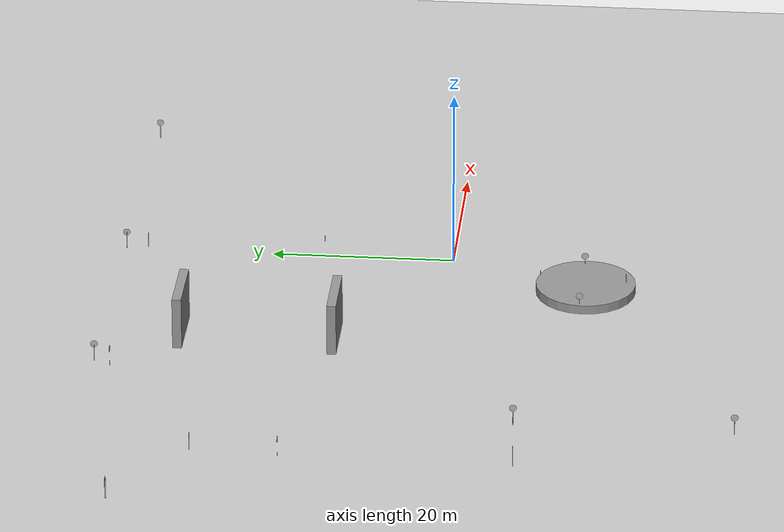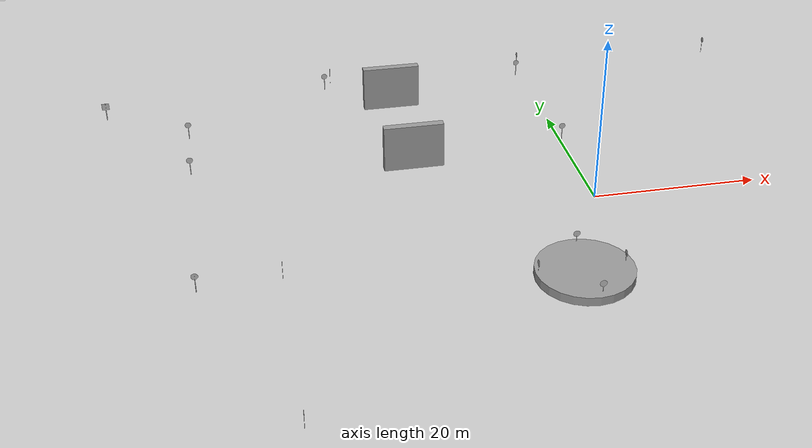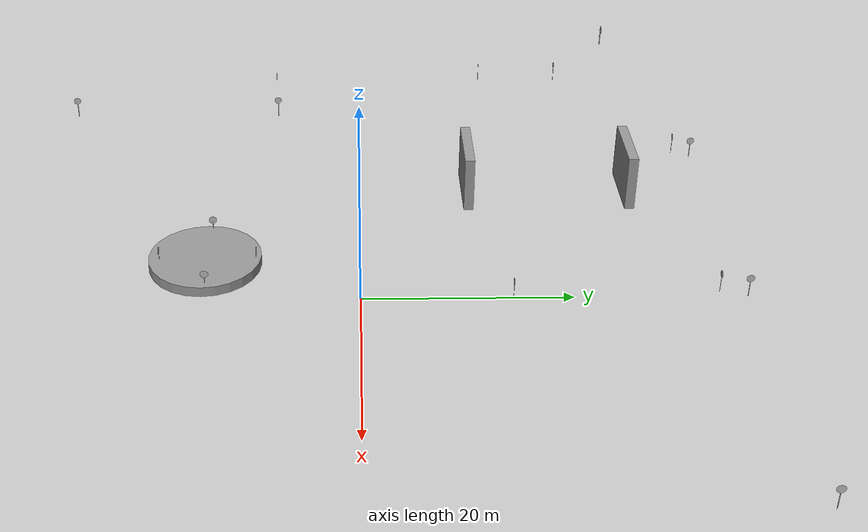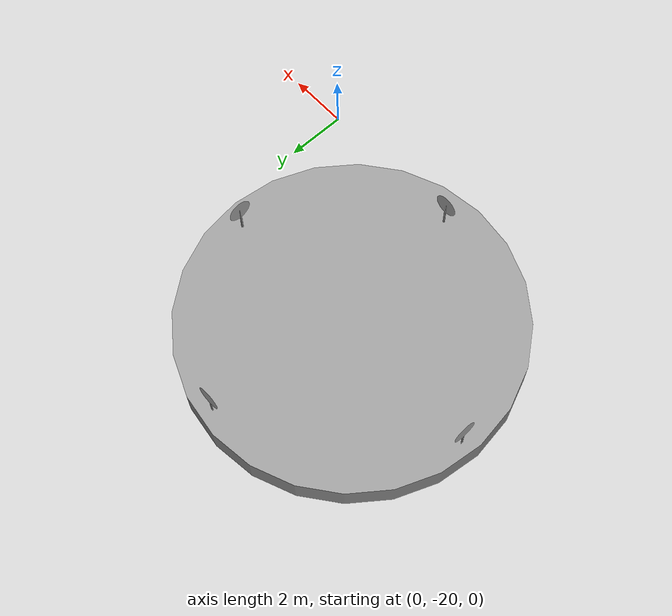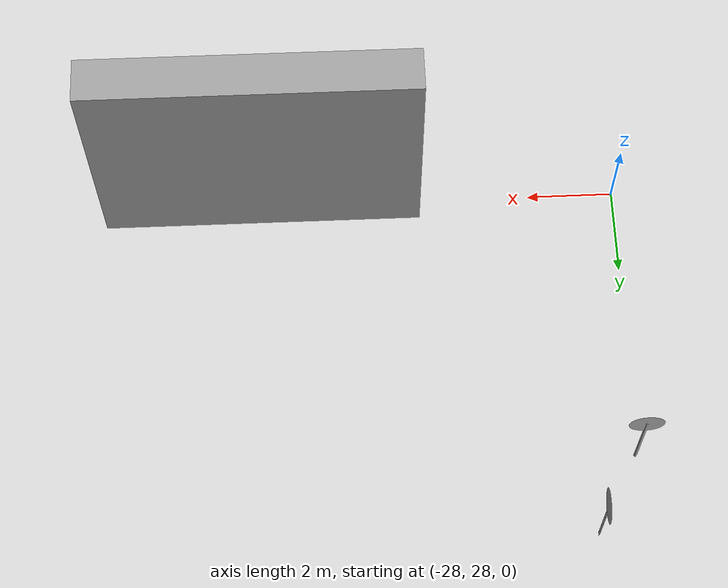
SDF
<sdf version="1.7">
 <world name="default">
  <spherical_coordinates>
   <surface_model>EARTH_WGS84</surface_model>
   <world_frame_orientation>ENU</world_frame_orientation>
   <latitude_deg>41.015137</latitude_deg>
   <longitude_deg>28.979530</longitude_deg>
   <elevation>0</elevation>
   <heading_deg>0</heading_deg>
  </spherical_coordinates>
  <light name="sun" type="directional">
   <pose>0 0 10 0 -0 0</pose>
   <diffuse>0.8 0.8 0.8 1</diffuse>
   <specular>0.2 0.2 0.2 1</specular>
   <attenuation>
    <range>1000</range>
    <constant>0.9</constant>
    <linear>0.01</linear>
    <quadratic>0.001</quadratic>
   </attenuation>
   <direction>-0.5 0.1 -0.9</direction>
   <spot><inner_angle>0</inner_angle><outer_angle>0</outer_angle><falloff>0</falloff></spot>
  </light>
  <gravity>0 0 -9.8</gravity>
  <magnetic_field>6e-06 2.3e-05 -4.2e-05</magnetic_field>
  <atmosphere type="adiabatic"/>
  <physics type="ode">
   <max_step_size>0.001</max_step_size>
   <real_time_factor>1</real_time_factor>
   <real_time_update_rate>1000</real_time_update_rate>
  </physics>
  <scene><ambient>0.4 0.4 0.4 1</ambient><background>0.7 0.7 0.7 1</background><shadows>1</shadows></scene>
  <spherical_coordinates>
   <surface_model>EARTH_WGS84</surface_model>
   <latitude_deg>0</latitude_deg>
   <longitude_deg>0</longitude_deg>
   <elevation>0</elevation>
   <heading_deg>0</heading_deg>
  </spherical_coordinates>
  <model name="Speed limit">
   <static>1</static>
   <link name="link">
    <collision name="collision">
     <geometry>
      <mesh><scale>10 10 10</scale><uri>model://no_left_turn_sign/meshes/no_left_turn_sign.dae</uri></mesh>
     </geometry>
    </collision>
    <visual name="visual">
     <geometry>
      <mesh><scale>10 10 10</scale><uri>model://no_left_turn_sign/meshes/no_left_turn_sign.dae</uri></mesh>
     </geometry>
    </visual>
   </link>
   <pose>28.4412 36.0462 0 0 0 -1.64023</pose>
  </model>
  <model name="No Right Turn">
   <static>1</static>
   <link name="link">
    <collision name="collision">
     <geometry>
      <mesh><scale>10 10 10</scale><uri>model://no_right_turn_sign/meshes/no_right_turn_sign.dae</uri></mesh>
     </geometry>
    </collision>
    <visual name="visual">
     <geometry>
      <mesh><scale>10 10 10</scale><uri>model://no_right_turn_sign/meshes/no_right_turn_sign.dae</uri></mesh>
     </geometry>
    </visual>
   </link>
   <pose>-0.661235 33.7792 0 0 0 -3.14</pose>
  </model>
  <model name="Speed limit_0">
   <static>1</static>
   <link name="link">
    <collision name="collision">
     <geometry>
      <mesh><scale>10 10 10</scale><uri>model://no_left_turn_sign/meshes/no_left_turn_sign.dae</uri></mesh>
     </geometry>
    </collision>
    <visual name="visual">
     <geometry>
      <mesh><scale>10 10 10</scale><uri>model://no_left_turn_sign/meshes/no_left_turn_sign.dae</uri></mesh>
     </geometry>
    </visual>
   </link>
   <pose>0.124258 36.3232 0 0 0 -1.57</pose>
  </model>
  <model name="No Right Turn_clone">
   <static>1</static>
   <link name="link">
    <collision name="collision">
     <geometry>
      <mesh><scale>10 10 10</scale><uri>model://no_right_turn_sign/meshes/no_right_turn_sign.dae</uri></mesh>
     </geometry>
    </collision>
    <visual name="visual">
     <geometry>
      <mesh><scale>10 10 10</scale><uri>model://no_right_turn_sign/meshes/no_right_turn_sign.dae</uri></mesh>
     </geometry>
    </visual>
   </link>
   <pose>-27.9237 34.6004 0 0 0 -3.14</pose>
  </model>
  <model name="Speed limit_0_clone">
   <static>1</static>
   <link name="link">
    <collision name="collision">
     <geometry>
      <mesh><scale>10 10 10</scale><uri>model://no_left_turn_sign/meshes/no_left_turn_sign.dae</uri></mesh>
     </geometry>
    </collision>
    <visual name="visual">
     <geometry>
      <mesh><scale>10 10 10</scale><uri>model://no_left_turn_sign/meshes/no_left_turn_sign.dae</uri></mesh>
     </geometry>
    </visual>
   </link>
   <pose>-26.9145 36.4256 0 0 0 -1.57</pose>
  </model>
  <model name="two_way_road_sign">
   <static>1</static>
   <link name="link">
    <visual name="visual">
     <pose>0 0 0 1.5708 -0 0</pose>
     <geometry><mesh><uri>model://two_way_road_sign/meshes/two_way_road_sign.obj</uri></mesh></geometry>
     <material>
      <script><uri>model://two_way_road_sign/materials/scripts</uri><name>street_signs</name></script>
     </material>
    </visual>
   </link>
   <pose>-57.3516 31.2576 0 0 -0 1.57</pose>
  </model>
  <model name="No Right Turn_0">
   <static>1</static>
   <link name="link">
    <collision name="collision">
     <geometry>
      <mesh><scale>10 10 10</scale><uri>model://no_right_turn_sign/meshes/no_right_turn_sign.dae</uri></mesh>
     </geometry>
    </collision>
    <visual name="visual">
     <geometry>
      <mesh><scale>10 10 10</scale><uri>model://no_right_turn_sign/meshes/no_right_turn_sign.dae</uri></mesh>
     </geometry>
    </visual>
   </link>
   <pose>-46.7536 23.8084 0 0 0 -3.14</pose>
  </model>
  <model name="Speed limit_1">
   <static>1</static>
   <link name="link">
    <collision name="collision">
     <geometry>
      <mesh><scale>10 10 10</scale><uri>model://no_left_turn_sign/meshes/no_left_turn_sign.dae</uri></mesh>
     </geometry>
    </collision>
    <visual name="visual">
     <geometry>
      <mesh><scale>10 10 10</scale><uri>model://no_left_turn_sign/meshes/no_left_turn_sign.dae</uri></mesh>
     </geometry>
    </visual>
   </link>
   <pose>-46.7902 -9.9318 0 0 -0 0</pose>
  </model>
  <model name="No Right Turn_1">
   <static>1</static>
   <link name="link">
    <collision name="collision">
     <geometry>
      <mesh><scale>10 10 10</scale><uri>model://no_right_turn_sign/meshes/no_right_turn_sign.dae</uri></mesh>
     </geometry>
    </collision>
    <visual name="visual">
     <geometry>
      <mesh><scale>10 10 10</scale><uri>model://no_right_turn_sign/meshes/no_right_turn_sign.dae</uri></mesh>
     </geometry>
    </visual>
   </link>
   <pose>-37.6539 -9.33869 0 0 0 -1.57</pose>
  </model>
  <model name="No Right Turn_1_clone">
   <static>1</static>
   <link name="link">
    <collision name="collision">
     <geometry>
      <mesh><scale>10 10 10</scale><uri>model://no_right_turn_sign/meshes/no_right_turn_sign.dae</uri></mesh>
     </geometry>
    </collision>
    <visual name="visual">
     <geometry>
      <mesh><scale>10 10 10</scale><uri>model://no_right_turn_sign/meshes/no_right_turn_sign.dae</uri></mesh>
     </geometry>
    </visual>
   </link>
   <pose>-37.8145 -32.6255 0 0 0 -1.57</pose>
  </model>
  <model name="No Right Turn_clone_0">
   <static>1</static>
   <link name="link">
    <collision name="collision">
     <geometry>
      <mesh><scale>10 10 10</scale><uri>model://no_right_turn_sign/meshes/no_right_turn_sign.dae</uri></mesh>
     </geometry>
    </collision>
    <visual name="visual">
     <geometry>
      <mesh><scale>10 10 10</scale><uri>model://no_right_turn_sign/meshes/no_right_turn_sign.dae</uri></mesh>
     </geometry>
    </visual>
   </link>
   <pose>0.235928 14.2629 0 0 0 -3.14</pose>
  </model>
  <model name="unit_cylinder">
   <pose>-6.10357 -14.9965 0.499998 1e-06 -0 -0.000675</pose>
   <link name="link">
    <inertial>
     <mass>1</mass>
     <inertia><ixx>0.145833</ixx><ixy>0</ixy><ixz>0</ixz><iyy>0.145833</iyy><iyz>0</iyz><izz>0.125</izz></inertia>
    </inertial>
    <collision name="collision">
     <geometry><cylinder><radius>5.46315</radius><length>1</length></cylinder></geometry>
    </collision>
    <visual name="visual">
     <geometry><cylinder><radius>5.46315</radius><length>1</length></cylinder></geometry>
     <material>
      <script><name>Gazebo/Grey</name><uri>file://media/materials/scripts/gazebo.material</uri></script>
     </material>
    </visual>
   </link>
  </model>
  <model name="Turn Right Ahead">
   <static>1</static>
   <link name="link">
    <collision name="collision">
     <geometry>
      <mesh><scale>10 10 10</scale><uri>model://turn_right_ahead_sign/meshes/turn_right_ahead_sign.dae</uri></mesh>
     </geometry>
    </collision>
    <visual name="visual">
     <geometry>
      <mesh><scale>10 10 10</scale><uri>model://turn_right_ahead_sign/meshes/turn_right_ahead_sign.dae</uri></mesh>
     </geometry>
    </visual>
   </link>
   <pose>-46.7584 14.5826 0 0 0 -3.14</pose>
  </model>
  <model name="Turn Right Ahead_clone">
   <static>1</static>
   <link name="link">
    <collision name="collision">
     <geometry>
      <mesh><scale>10 10 10</scale><uri>model://turn_right_ahead_sign/meshes/turn_right_ahead_sign.dae</uri></mesh>
     </geometry>
    </collision>
    <visual name="visual">
     <geometry>
      <mesh><scale>10 10 10</scale><uri>model://turn_right_ahead_sign/meshes/turn_right_ahead_sign.dae</uri></mesh>
     </geometry>
    </visual>
   </link>
   <pose>-5.61039 -19.4086 0 0 0 -3.14</pose>
  </model>
  <model name="Turn Right Ahead_clone_0">
   <static>1</static>
   <link name="link">
    <collision name="collision">
     <geometry>
      <mesh><scale>10 10 10</scale><uri>model://turn_right_ahead_sign/meshes/turn_right_ahead_sign.dae</uri></mesh>
     </geometry>
    </collision>
    <visual name="visual">
     <geometry>
      <mesh><scale>10 10 10</scale><uri>model://turn_right_ahead_sign/meshes/turn_right_ahead_sign.dae</uri></mesh>
     </geometry>
    </visual>
   </link>
   <pose>-1.42538 -14.6214 0 0 0 -1.57</pose>
  </model>
  <model name="Turn Right Ahead_clone_1">
   <static>1</static>
   <link name="link">
    <collision name="collision">
     <geometry>
      <mesh><scale>10 10 10</scale><uri>model://turn_right_ahead_sign/meshes/turn_right_ahead_sign.dae</uri></mesh>
     </geometry>
    </collision>
    <visual name="visual">
     <geometry>
      <mesh><scale>10 10 10</scale><uri>model://turn_right_ahead_sign/meshes/turn_right_ahead_sign.dae</uri></mesh>
     </geometry>
    </visual>
   </link>
   <pose>-5.50718 -9.9825 0 0 -0 0</pose>
  </model>
  <model name="Turn Right Ahead_clone_2">
   <static>1</static>
   <link name="link">
    <collision name="collision">
     <geometry>
      <mesh><scale>10 10 10</scale><uri>model://turn_right_ahead_sign/meshes/turn_right_ahead_sign.dae</uri></mesh>
     </geometry>
    </collision>
    <visual name="visual">
     <geometry>
      <mesh><scale>10 10 10</scale><uri>model://turn_right_ahead_sign/meshes/turn_right_ahead_sign.dae</uri></mesh>
     </geometry>
    </visual>
   </link>
   <pose>-11.1796 -14.618 0 0 -0 1.57</pose>
  </model>
  <model name="unit_box">
   <pose>-19.7001 11.2552 2.89835 -1.3e-05 0.000197 0.003063</pose>
   <link name="link">
    <inertial>
     <mass>1</mass>
     <inertia>
      <ixx>0.166667</ixx>
      <ixy>0</ixy>
      <ixz>0</ixz>
      <iyy>0.166667</iyy>
      <iyz>0</iyz>
      <izz>0.166667</izz>
     </inertia>
    </inertial>
    <collision name="collision"><geometry><box><size>7.41939 1 5.79814</size></box></geometry></collision>
    <visual name="visual">
     <geometry><box><size>7.41939 1 5.79814</size></box></geometry>
     <material>
      <script><name>Gazebo/Grey</name><uri>file://media/materials/scripts/gazebo.material</uri></script>
     </material>
    </visual>
   </link>
  </model>
  <model name="unit_box_clone">
   <pose>-19.6759 27.9335 2.89835 1.3e-05 -0.000197 0.001674</pose>
   <link name="link">
    <inertial>
     <mass>1</mass>
     <inertia>
      <ixx>0.166667</ixx>
      <ixy>0</ixy>
      <ixz>0</ixz>
      <iyy>0.166667</iyy>
      <iyz>0</iyz>
      <izz>0.166667</izz>
     </inertia>
    </inertial>
    <collision name="collision"><geometry><box><size>7.41939 1 5.79815</size></box></geometry></collision>
    <visual name="visual">
     <geometry><box><size>7.41939 1 5.79815</size></box></geometry>
     <material>
      <script><name>Gazebo/Grey</name><uri>file://media/materials/scripts/gazebo.material</uri></script>
     </material>
    </visual>
   </link>
  </model>
  <model name="teknofest_ground_0">
   <static>1</static>
   <link name="link">
    <collision name="collision">
     <geometry><plane><normal>0 0 1</normal><size>240 240</size></plane></geometry>
     <surface><friction><ode><mu>75</mu><mu2>75</mu2></ode></friction></surface>
    </collision>
    <visual name="visual">
     <cast_shadows>0</cast_shadows>
     <geometry><plane><normal>0 0 1</normal><size>240 240</size></plane></geometry>
     <material>
      <script>
       <uri>model://teknofest_ground/materials/scripts</uri>
       <uri>model://teknofest_ground/materials/textures</uri>
       <name>teknofest_ground/Image</name>
      </script>
     </material>
    </visual>
   </link>
   <pose>0.06104 0.2637 0 0 -0 0</pose>
  </model>
 </world>
</sdf>
